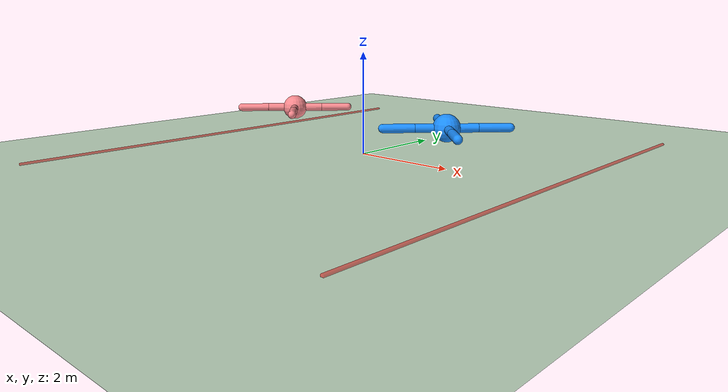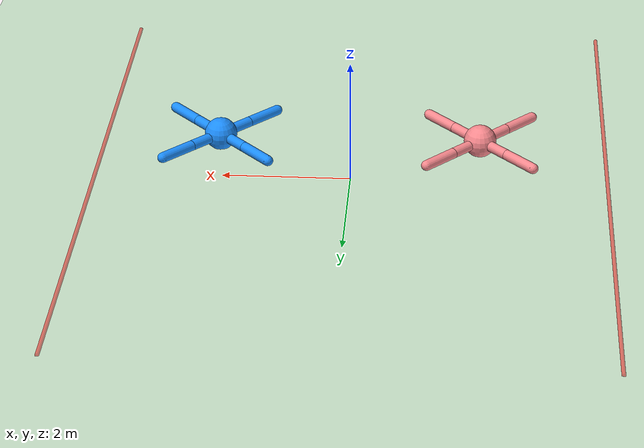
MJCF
<mujoco model="mutiagent_world">
  <compiler angle="degree" coordinate="local" inertiafromgeom="true" />

  <option integrator="RK4" timestep="0.003" solver="PGS" iterations="1000" />

  <default>
    <joint armature="1" damping="1" limited="true" />
  <default class="agent0"><joint armature="1" damping="1" limited="true" />
    <geom conaffinity="0" condim="3" density="5.0" friction="1 0.5 0.5" margin="0.01" rgba="0.98 0.54 0.56 1" material="geom" contype="1" />
  </default><default class="agent1"><joint armature="1" damping="1" limited="true" />
    <geom conaffinity="1" condim="3" density="5.0" friction="1 0.5 0.5" margin="0.01" rgba="0.11 0.56 1 1" material="geom" contype="0" />
  </default></default>

  <visual>
    <headlight ambient=".1 .1 .1" diffuse=".6 .6 .6" specular="0.3 0.3 0.3" />
    <map znear=".01" />
    <quality shadowsize="16384" />
  </visual>

  <asset>
    <texture builtin="gradient" height="100" rgb1=".4 .5 .6" rgb2="0 0 0" type="skybox" width="100" />
    <texture builtin="flat" height="1278" mark="cross" markrgb="0 0 0" name="texgeom" random="0.01" rgb1="0.8 0.6 0.4" rgb2="1 1 1" type="cube" width="127" />
    <texture builtin="checker" height="100" name="texplane" rgb1="0 0 0" rgb2="0.8 0.8 0.8" type="2d" width="100" />
    <material name="geom" texture="texgeom" texuniform="true" />
    <texture name="MatPlane" type="2d" builtin="checker" rgb1=".4 .4 .4" rgb2=".4 .4 .4" width="300" height="300" mark="edge" markrgb="0.1 0.1 0.1" />
    <material name="MatPlane" texture="MatPlane" texrepeat="2 2" texuniform="true" reflectance=".2" />
  </asset>

  <worldbody>
    <light cutoff="100" diffuse="1 1 1" dir="-0 0 -1.3" directional="true" exponent="1" pos="0 0 1.3" specular=".1 .1 .1" />
    <geom contype="1" conaffinity="1" friction="1 .1 .1" condim="3" material="MatPlane" name="floor" pos="0 0 0" rgba="0.8 0.9 0.8 1" size="20 20 0.125" type="plane" />
    <geom fromto="4 -5 0  4 +5 0" name="rightgoal" rgba="1 0 0 0.5" size=".03" type="cylinder" />
    <geom fromto="-4 -5 0  -4 +5 0" name="leftgoal" rgba="1 0 0 0.5" size=".03" type="cylinder" />
  <body name="agent0/0" pos="-2 0 0.75" euler="0 0 0">
    <geom pos="0 0 0" size="0.25" type="sphere" class="agent0" name="agent0/anon787846415" />
    <joint armature="0" damping="0" limited="false" margin="0.01" name="agent0/0_joint" pos="0 0 0" range="-30 30" type="free" />
    <body name="agent0/1" pos="0 0 0">
      <geom fromto="0 0 0 0.4 0.4 0" size="0.08" type="capsule" class="agent0" name="agent0/anon2563451925" />
      <joint axis="0 0 1" name="agent0/1_joint" pos="0 0 0" range="-30 30" type="hinge" />
      <body name="agent0/11" pos="0.4 0.4 0">
        <geom fromto="0 0 0 0.4 0.4 0" size="0.08" type="capsule" class="agent0" name="agent0/anon9019323607" />
        <joint axis="-0.707107 0.707107 0" name="agent0/11_joint" pos="0 0 0" range="30 70" type="hinge" />
      </body>
    </body>
    <body name="agent0/2" pos="0 0 0">
      <geom fromto="0 0 0 -0.4 0.4 0" size="0.08" type="capsule" class="agent0" name="agent0/anon4537253173" />
      <joint axis="0 0 1" name="agent0/2_joint" pos="0 0 0" range="-30 30" type="hinge" />
      <body name="agent0/12" pos="-0.4 0.4 0">
        <geom fromto="0 0 0 -0.4 0.4 0" size="0.08" type="capsule" class="agent0" name="agent0/anon7395928408" />
        <joint axis="-0.707107 -0.707107 0" name="agent0/12_joint" pos="0 0 0" range="30 70" type="hinge" />
      </body>
    </body>
    <body name="agent0/3" pos="0 0 0">
      <geom fromto="0 0 0 -0.4 -0.4 0" size="0.08" type="capsule" class="agent0" name="agent0/anon4298312066" />
      <joint axis="0 0 1" name="agent0/3_joint" pos="0 0 0" range="-30 30" type="hinge" />
      <body name="agent0/13" pos="-0.4 -0.4 0">
        <geom fromto="0 0 0 -0.4 -0.4 0" size="0.08" type="capsule" class="agent0" name="agent0/anon2652062881" />
        <joint axis="0.707107 -0.707107 0" name="agent0/13_joint" pos="0 0 0" range="30 70" type="hinge" />
      </body>
    </body>
    <body name="agent0/4" pos="0 0 0">
      <geom fromto="0 0 0 0.4 -0.4 0" size="0.08" type="capsule" class="agent0" name="agent0/anon4325316861" />
      <joint axis="0 0 1" name="agent0/4_joint" pos="0 0 0" range="-30 30" type="hinge" />
      <body name="agent0/14" pos="0.4 -0.4 0">
        <geom fromto="0 0 0 0.4 -0.4 0" size="0.08" type="capsule" class="agent0" name="agent0/anon2253890011" />
        <joint axis="0.707107 0.707107 0" name="agent0/14_joint" pos="0 0 0" range="30 70" type="hinge" />
      </body>
    </body>
  </body>

  <body name="agent1/0" pos="2 0 0.75" euler="0 0 180">
    <geom pos="0 0 0" size="0.25" type="sphere" class="agent1" name="agent1/anon4495394816" />
    <joint armature="0" damping="0" limited="false" margin="0.01" name="agent1/0_joint" pos="0 0 0" range="-30 30" type="free" />
    <body name="agent1/1" pos="0 0 0">
      <geom fromto="0 0 0 0.4 0.4 0" size="0.08" type="capsule" class="agent1" name="agent1/anon4684118974" />
      <joint axis="0 0 1" name="agent1/1_joint" pos="0 0 0" range="-30 30" type="hinge" />
      <body name="agent1/11" pos="0.4 0.4 0">
        <geom fromto="0 0 0 0.4 0.4 0" size="0.08" type="capsule" class="agent1" name="agent1/anon1934879561" />
        <joint axis="-0.707107 0.707107 0" name="agent1/11_joint" pos="0 0 0" range="30 70" type="hinge" />
      </body>
    </body>
    <body name="agent1/2" pos="0 0 0">
      <geom fromto="0 0 0 -0.4 0.4 0" size="0.08" type="capsule" class="agent1" name="agent1/anon8646907154" />
      <joint axis="0 0 1" name="agent1/2_joint" pos="0 0 0" range="-30 30" type="hinge" />
      <body name="agent1/12" pos="-0.4 0.4 0">
        <geom fromto="0 0 0 -0.4 0.4 0" size="0.08" type="capsule" class="agent1" name="agent1/anon5950318586" />
        <joint axis="-0.707107 -0.707107 0" name="agent1/12_joint" pos="0 0 0" range="30 70" type="hinge" />
      </body>
    </body>
    <body name="agent1/3" pos="0 0 0">
      <geom fromto="0 0 0 -0.4 -0.4 0" size="0.08" type="capsule" class="agent1" name="agent1/anon68574554" />
      <joint axis="0 0 1" name="agent1/3_joint" pos="0 0 0" range="-30 30" type="hinge" />
      <body name="agent1/13" pos="-0.4 -0.4 0">
        <geom fromto="0 0 0 -0.4 -0.4 0" size="0.08" type="capsule" class="agent1" name="agent1/anon991681410" />
        <joint axis="0.707107 -0.707107 0" name="agent1/13_joint" pos="0 0 0" range="30 70" type="hinge" />
      </body>
    </body>
    <body name="agent1/4" pos="0 0 0">
      <geom fromto="0 0 0 0.4 -0.4 0" size="0.08" type="capsule" class="agent1" name="agent1/anon3578544904" />
      <joint axis="0 0 1" name="agent1/4_joint" pos="0 0 0" range="-30 30" type="hinge" />
      <body name="agent1/14" pos="0.4 -0.4 0">
        <geom fromto="0 0 0 0.4 -0.4 0" size="0.08" type="capsule" class="agent1" name="agent1/anon9334530083" />
        <joint axis="0.707107 0.707107 0" name="agent1/14_joint" pos="0 0 0" range="30 70" type="hinge" />
      </body>
    </body>
  </body>

  </worldbody>
<actuator>
    <motor ctrllimited="true" ctrlrange="-1.0 1.0" joint="agent0/1_joint" gear="150" name="agent0/1_joint" class="agent0" />
    <motor ctrllimited="true" ctrlrange="-1.0 1.0" joint="agent0/2_joint" gear="150" name="agent0/2_joint" class="agent0" />
    <motor ctrllimited="true" ctrlrange="-1.0 1.0" joint="agent0/3_joint" gear="150" name="agent0/3_joint" class="agent0" />
    <motor ctrllimited="true" ctrlrange="-1.0 1.0" joint="agent0/4_joint" gear="150" name="agent0/4_joint" class="agent0" />
    <motor ctrllimited="true" ctrlrange="-1.0 1.0" joint="agent0/11_joint" gear="150" name="agent0/11_joint" class="agent0" />
    <motor ctrllimited="true" ctrlrange="-1.0 1.0" joint="agent0/12_joint" gear="150" name="agent0/12_joint" class="agent0" />
    <motor ctrllimited="true" ctrlrange="-1.0 1.0" joint="agent0/13_joint" gear="150" name="agent0/13_joint" class="agent0" />
    <motor ctrllimited="true" ctrlrange="-1.0 1.0" joint="agent0/14_joint" gear="150" name="agent0/14_joint" class="agent0" />
  <motor ctrllimited="true" ctrlrange="-1.0 1.0" joint="agent1/1_joint" gear="150" name="agent1/1_joint" class="agent1" />
    <motor ctrllimited="true" ctrlrange="-1.0 1.0" joint="agent1/2_joint" gear="150" name="agent1/2_joint" class="agent1" />
    <motor ctrllimited="true" ctrlrange="-1.0 1.0" joint="agent1/3_joint" gear="150" name="agent1/3_joint" class="agent1" />
    <motor ctrllimited="true" ctrlrange="-1.0 1.0" joint="agent1/4_joint" gear="150" name="agent1/4_joint" class="agent1" />
    <motor ctrllimited="true" ctrlrange="-1.0 1.0" joint="agent1/11_joint" gear="150" name="agent1/11_joint" class="agent1" />
    <motor ctrllimited="true" ctrlrange="-1.0 1.0" joint="agent1/12_joint" gear="150" name="agent1/12_joint" class="agent1" />
    <motor ctrllimited="true" ctrlrange="-1.0 1.0" joint="agent1/13_joint" gear="150" name="agent1/13_joint" class="agent1" />
    <motor ctrllimited="true" ctrlrange="-1.0 1.0" joint="agent1/14_joint" gear="150" name="agent1/14_joint" class="agent1" />
  </actuator>
  </mujoco>
